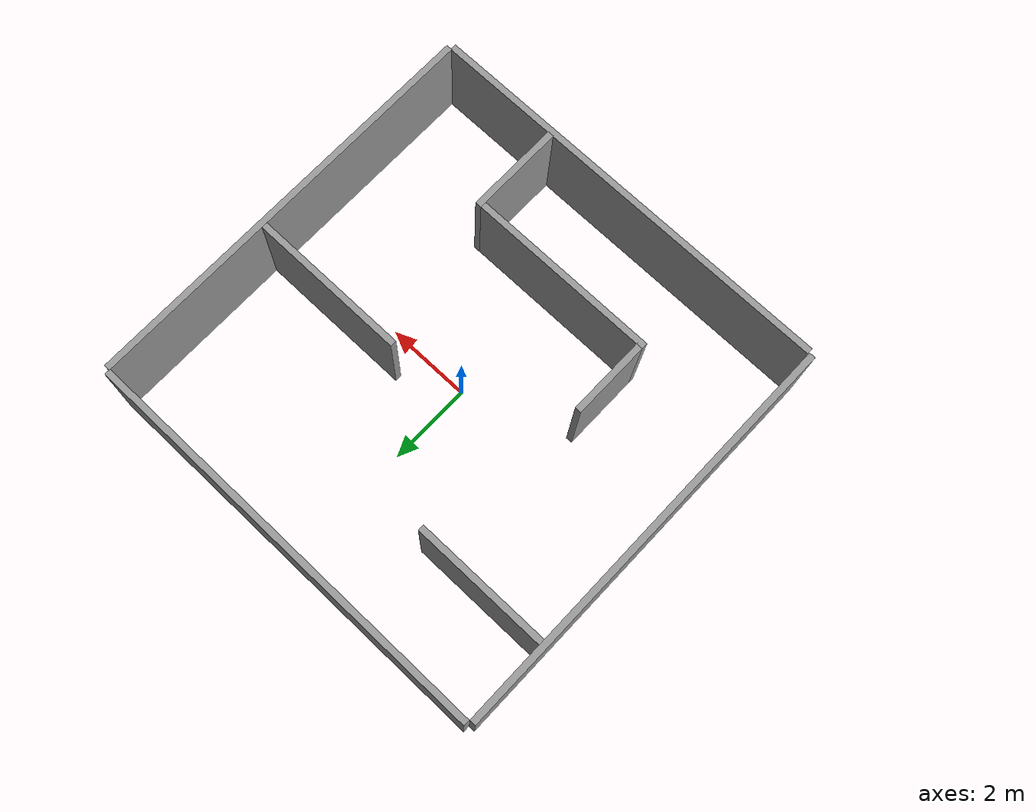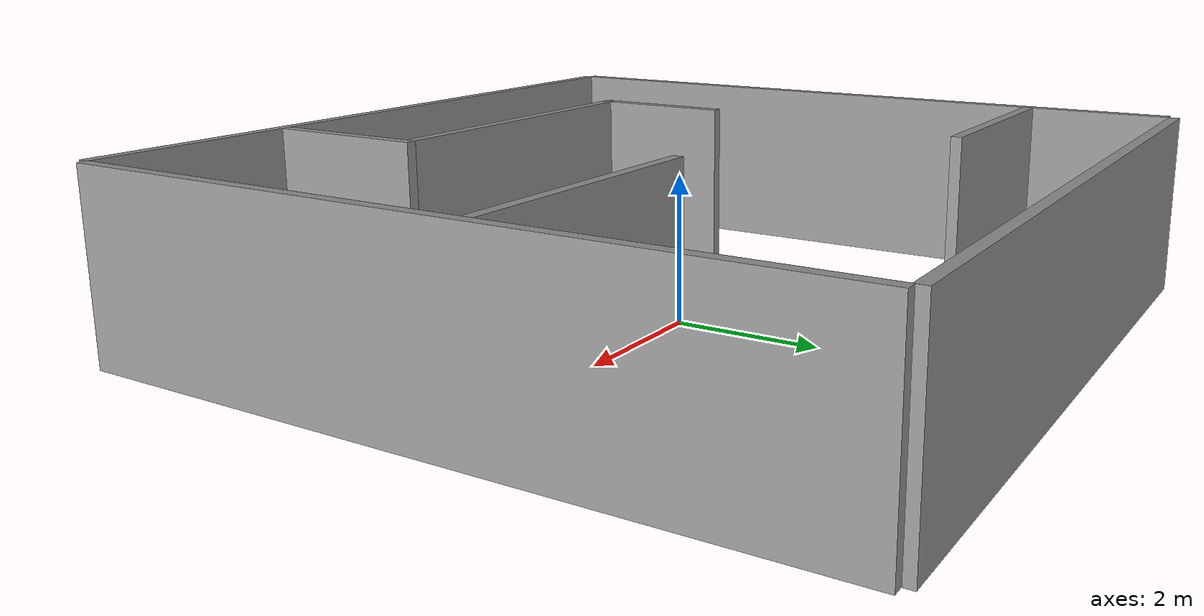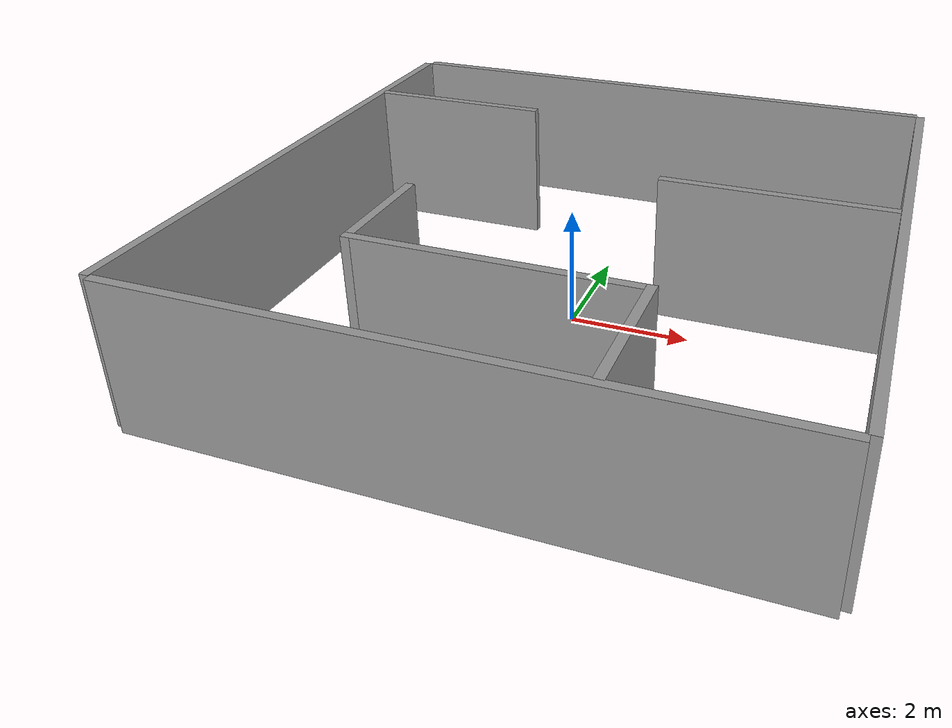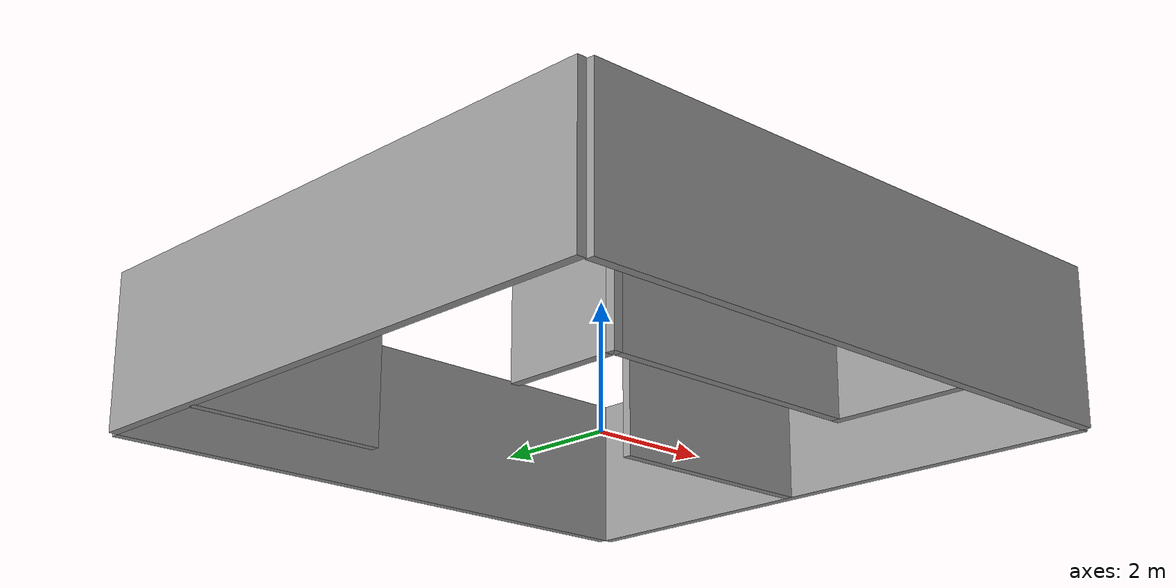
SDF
<?xml version='1.0'?>
<sdf version='1.6'>
  <model name='project_maze.maze'>
    <pose frame=''>-0.021778 0.067853 0 0 -0 0</pose>
    <link name='Wall_15'>
      <collision name='Wall_15_Collision'>
        <geometry>
          <box>
            <size>10 0.15 2.5</size>
          </box>
        </geometry>
        <pose frame=''>0 0 1.25 0 -0 0</pose>
      </collision>
      <visual name='Wall_15_Visual'>
        <pose frame=''>0 0 1.25 0 -0 0</pose>
        <geometry>
          <box>
            <size>10 0.15 2.5</size>
          </box>
        </geometry>
        <material>
          <script>
            <uri>file://media/materials/scripts/gazebo.material</uri>
            <name>Gazebo/Grey</name>
          </script>
          <ambient>1 1 1 1</ambient>
        </material>
      </visual>
      <pose frame=''>-5.07243 -0.026452 0 0 0 -1.5708</pose>
    </link>
    <link name='Wall_17'>
      <collision name='Wall_17_Collision'>
        <geometry>
          <box>
            <size>10 0.15 2.5</size>
          </box>
        </geometry>
        <pose frame=''>0 0 1.25 0 -0 0</pose>
      </collision>
      <visual name='Wall_17_Visual'>
        <pose frame=''>0 0 1.25 0 -0 0</pose>
        <geometry>
          <box>
            <size>10 0.15 2.5</size>
          </box>
        </geometry>
        <material>
          <script>
            <uri>file://media/materials/scripts/gazebo.material</uri>
            <name>Gazebo/Grey</name>
          </script>
          <ambient>1 1 1 1</ambient>
        </material>
      </visual>
      <pose frame=''>0.004274 5.05532 0 0 -0 3.14159</pose>
    </link>
    <link name='Wall_19'>
      <collision name='Wall_19_Collision'>
        <geometry>
          <box>
            <size>10 0.15 2.5</size>
          </box>
        </geometry>
        <pose frame=''>0 0 1.25 0 -0 0</pose>
      </collision>
      <visual name='Wall_19_Visual'>
        <pose frame=''>0 0 1.25 0 -0 0</pose>
        <geometry>
          <box>
            <size>10 0.15 2.5</size>
          </box>
        </geometry>
        <material>
          <script>
            <uri>file://media/materials/scripts/gazebo.material</uri>
            <name>Gazebo/Grey</name>
          </script>
          <ambient>1 1 1 1</ambient>
        </material>
      </visual>
      <pose frame=''>5.07243 0.004852 0 0 -0 1.5708</pose>
    </link>
    <link name='Wall_21'>
      <collision name='Wall_21_Collision'>
        <geometry>
          <box>
            <size>10 0.15 2.5</size>
          </box>
        </geometry>
        <pose frame=''>0 0 1.25 0 -0 0</pose>
      </collision>
      <visual name='Wall_21_Visual'>
        <pose frame=''>0 0 1.25 0 -0 0</pose>
        <geometry>
          <box>
            <size>10 0.15 2.5</size>
          </box>
        </geometry>
        <material>
          <script>
            <uri>file://media/materials/scripts/gazebo.material</uri>
            <name>Gazebo/Grey</name>
          </script>
          <ambient>1 1 1 1</ambient>
        </material>
      </visual>
      <pose frame=''>0.021453 -5.05532 0 0 -0 0</pose>
    </link>
    <link name='Wall_23'>
      <collision name='Wall_23_Collision'>
        <geometry>
          <box>
            <size>3.25 0.15 2.5</size>
          </box>
        </geometry>
        <pose frame=''>0 0 1.25 0 -0 0</pose>
      </collision>
      <visual name='Wall_23_Visual'>
        <pose frame=''>0 0 1.25 0 -0 0</pose>
        <geometry>
          <box>
            <size>3.25 0.15 2.5</size>
          </box>
        </geometry>
        <material>
          <script>
            <uri>file://media/materials/scripts/gazebo.material</uri>
            <name>Gazebo/Grey</name>
          </script>
          <ambient>1 1 1 1</ambient>
        </material>
      </visual>
      <pose frame=''>-3.40675 2.97794 0 0 -0 0</pose>
    </link>
    <link name='Wall_28'>
      <collision name='Wall_28_Collision'>
        <geometry>
          <box>
            <size>2.25 0.15 2.5</size>
          </box>
        </geometry>
        <pose frame=''>0 0 1.25 0 -0 0</pose>
      </collision>
      <visual name='Wall_28_Visual'>
        <pose frame=''>0 0 1.25 0 -0 0</pose>
        <geometry>
          <box>
            <size>2.25 0.15 2.5</size>
          </box>
        </geometry>
        <material>
          <script>
            <uri>file://media/materials/scripts/gazebo.material</uri>
            <name>Gazebo/Grey</name>
          </script>
          <ambient>1 1 1 1</ambient>
        </material>
      </visual>
      <pose frame=''>2.09231 -3.87232 0 0 -0 1.5708</pose>
    </link>
    <link name='Wall_30'>
      <collision name='Wall_30_Collision'>
        <geometry>
          <box>
            <size>4.5 0.15 2.5</size>
          </box>
        </geometry>
        <pose frame=''>0 0 1.25 0 -0 0</pose>
      </collision>
      <visual name='Wall_30_Visual'>
        <pose frame=''>0 0 1.25 0 -0 0</pose>
        <geometry>
          <box>
            <size>4.5 0.15 2.5</size>
          </box>
        </geometry>
        <material>
          <script>
            <uri>file://media/materials/scripts/gazebo.material</uri>
            <name>Gazebo/Grey</name>
          </script>
          <ambient>1 1 1 1</ambient>
        </material>
      </visual>
      <pose frame=''>-0.233543 -2.82458 0 0 -0 3.14159</pose>
    </link>
    <link name='Wall_32'>
      <collision name='Wall_32_Collision'>
        <geometry>
          <box>
            <size>2 0.15 2.5</size>
          </box>
        </geometry>
        <pose frame=''>0 0 1.25 0 -0 0</pose>
      </collision>
      <visual name='Wall_32_Visual'>
        <pose frame=''>0 0 1.25 0 -0 0</pose>
        <geometry>
          <box>
            <size>2 0.15 2.5</size>
          </box>
        </geometry>
        <material>
          <script>
            <uri>file://media/materials/scripts/gazebo.material</uri>
            <name>Gazebo/Grey</name>
          </script>
          <ambient>1 1 1 1</ambient>
        </material>
      </visual>
      <pose frame=''>-2.40854 -1.89958 0 0 -0 1.5708</pose>
    </link>
    <link name='Wall_34'>
      <collision name='Wall_34_Collision'>
        <geometry>
          <box>
            <size>3.75 0.15 2.5</size>
          </box>
        </geometry>
        <pose frame=''>0 0 1.25 0 -0 0</pose>
      </collision>
      <visual name='Wall_34_Visual'>
        <pose frame=''>0 0 1.25 0 -0 0</pose>
        <geometry>
          <box>
            <size>3.75 0.15 2.5</size>
          </box>
        </geometry>
        <material>
          <script>
            <uri>file://media/materials/scripts/gazebo.material</uri>
            <name>Gazebo/Grey</name>
          </script>
          <ambient>1 1 1 1</ambient>
        </material>
      </visual>
      <pose frame=''>3.11971 0.649212 0 0 -0 0</pose>
    </link>
    <static>1</static>
  </model>
</sdf>
